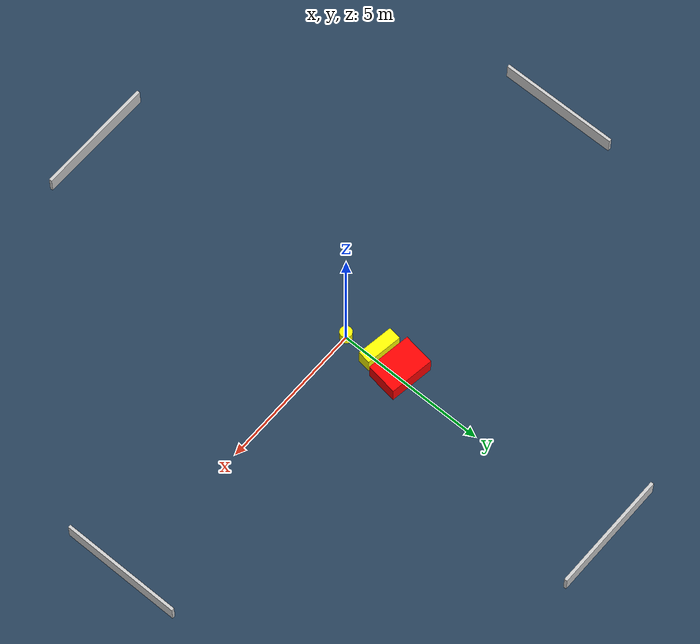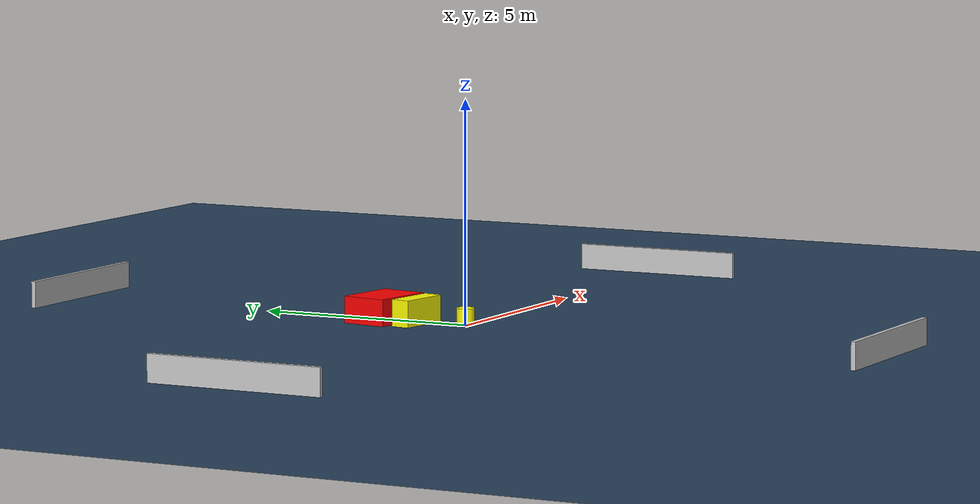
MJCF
<?xml version="1.0" ?>
<mujoco model="generated_environment">
  <option timestep="0.01" integrator="RK4" cone="elliptic"/>
  <default>
    <geom density="1"/>
  </default>
  <asset>
    <texture builtin="gradient" height="3072" name="skybox" rgb1="0.3 0.5 0.7" rgb2="0 0 0" type="skybox" width="512"/>
    <texture builtin="checker" height="300" name="groundplane" rgb1="0.2 0.3 0.4" rgb2="0.1 0.2 0.3" type="2d" width="300"/>
    <material name="groundplane" reflectance="0.2" texrepeat="5 5" texture="groundplane"/>
  </asset>
  <worldbody>
    <light dir="0 0 -1" directional="true" pos="0 0 1.5"/>
    <geom condim="3" friction="0.5 0.005 0.001" material="groundplane" name="floor" pos="0 0 0" size="0 0 0.05" type="plane"/>
    <body name="walls">
      <geom name="wall_1" condim="4" pos="-10.0 0.0 0.3" rgba="0.800000011920929 0.800000011920929 0.800000011920929 1.0" size="0.05 2.0 0.3" type="box"/>
      <geom name="wall_2" condim="4" pos="10.0 0.0 0.3" rgba="0.800000011920929 0.800000011920929 0.800000011920929 1.0" size="0.05 2.0 0.3" type="box"/>
      <geom name="wall_3" condim="4" pos="0.0 -10.0 0.3" rgba="0.800000011920929 0.800000011920929 0.800000011920929 1.0" size="2.0 0.05 0.3" type="box"/>
      <geom name="wall_4" condim="4" pos="0.0 10.0 0.3" rgba="0.800000011920929 0.800000011920929 0.800000011920929 1.0" size="2.0 0.05 0.3" type="box"/>
    </body>
    <body name="robot">
      <joint name="joint_x" type="slide" pos="0 0 0" axis="1 0 0"/>
      <joint name="joint_y" type="slide" pos="0 0 0" axis="0 1 0"/>
      <geom name="robot" type="cylinder" pos="0.0 0.0 0.2" size="0.2 0.2 0.0" mass="5.0" friction="1.0 0.005 0.0001" condim="4" rgba="1.0 1.0 0.0 1.0"/>
    </body>
    <body name="obstacle_1_movable">
      <geom name="obstacle_1_movable" condim="4" pos="-0.2328750252804711 1.0977456562951105 0.3" euler="0 0 81.36692950904249" friction="0.0 0.005 0.001" rgba="1.0 1.0 0.0 1.0" size="0.21531110641777312 0.611339531816764 0.3" type="box" mass="0.1"/>
      <joint type="free"/>
    </body>
    <body name="obstacle_2_static">
      <geom name="obstacle_2_static" condim="4" pos="-0.15817650517074516 1.9622605055036935 0.3" euler="0 0 81.6160510346043" friction="0.0 0.005 0.001" rgba="1.0 0.0 0.0 1.0" size="0.5291058685245461 0.7442625587962877 0.3" type="box"/>
    </body>
  </worldbody>
  <actuator>
    <motor name="actuator_x" joint="joint_x" gear="1" ctrlrange="-1 1"/>
    <motor name="actuator_y" joint="joint_y" gear="1" ctrlrange="-1 1"/>
  </actuator>
</mujoco>
